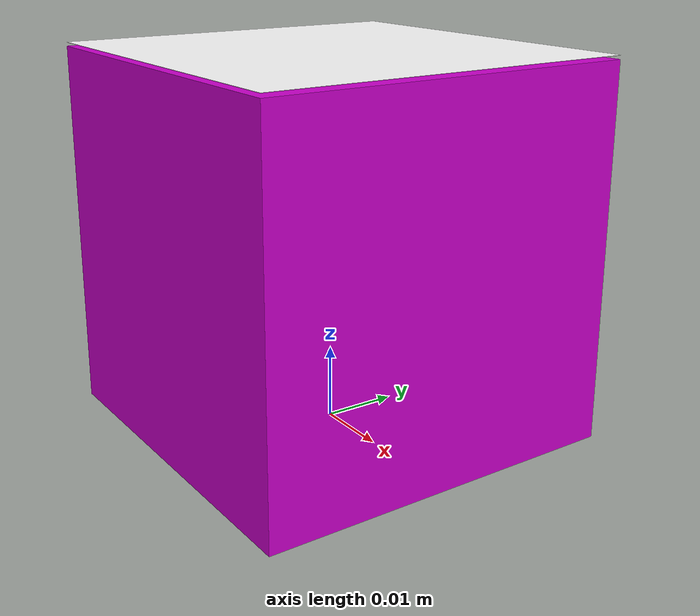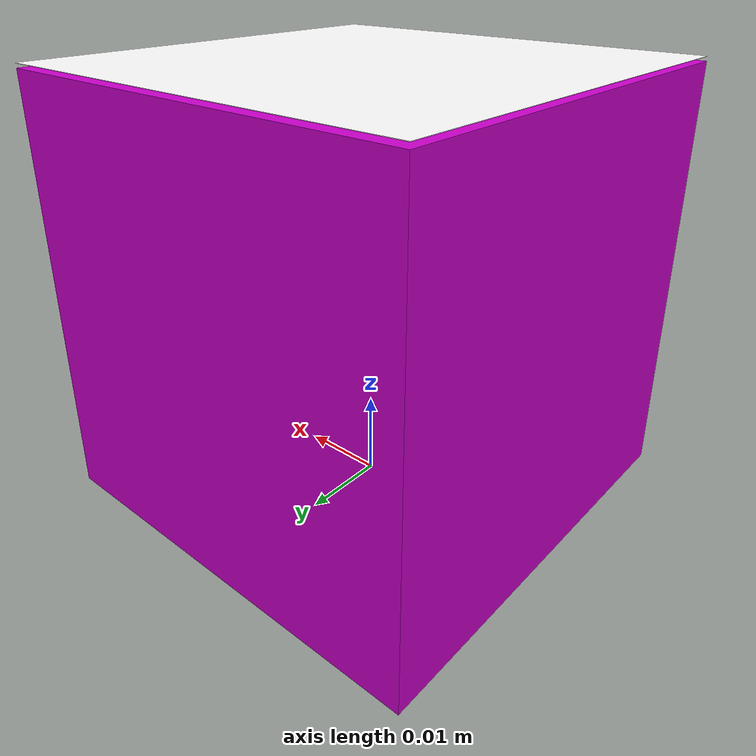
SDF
<?xml version="1.0"?>
<sdf version="1.6">
    <model name="box">
        <link name="box">
            <pose>0 0 0.025 0 0 0</pose>
            <inertial>
                <mass>0.001</mass>
                <inertia>
                    <ixx>1e-6</ixx>
                    <ixy>0</ixy>
                    <ixz>0</ixz>
                    <iyy>1e-6</iyy>
                    <iyz>0</iyz>
                    <izz>1e-6</izz>
                </inertia>
            </inertial>

            <visual name="box_body_visual">
                <geometry>
                    <box>
                        <size>0.05 0.05 0.05</size>
                    </box>
                </geometry>
                <material>
                    <ambient>0.8 0 0.8 1</ambient>
                    <diffuse>0.8 0 0.8 1</diffuse>
                </material>
            </visual>

            <visual name="top_surface_visual">
                <pose>0 0 0.0255 0 0 0</pose>
                <geometry>
                    <plane>
                        <normal>0 0 1</normal>
                        <size>0.05 0.05</size>
                    </plane>
                </geometry>
                <material>
                    <ambient>1 1 1 1</ambient>
                    <diffuse>1 1 1 1</diffuse>
                    <specular>0 0 0 1</specular>

                    <pbr>
                        <metal>
                            <albedo_map>
                                /home/rikisu/major_project_ws/src/delta_robot_description/materials/textures/aruco_marker.png</albedo_map>
                            <roughness>1.0</roughness>
                            <metalness>0.0</metalness>
                        </metal>
                    </pbr>
                </material>
            </visual>

            <collision name="box_collision">
                <geometry>
                    <box>
                        <size>0.05 0.05 0.05</size>
                    </box>
                </geometry>
            </collision>
        </link>
    </model>
</sdf>
